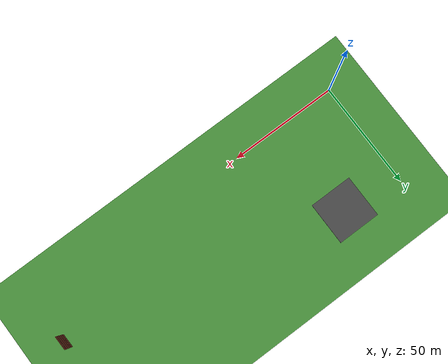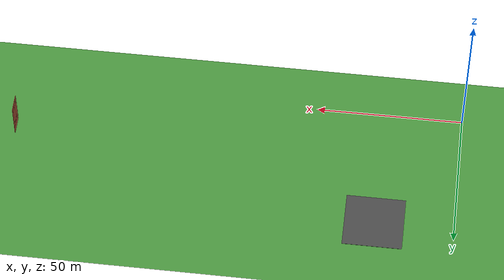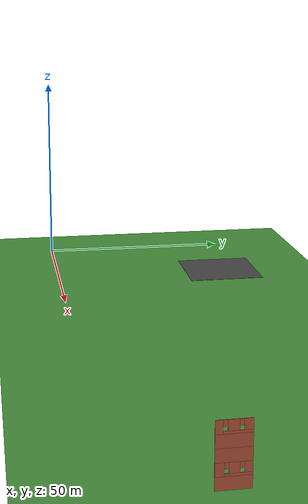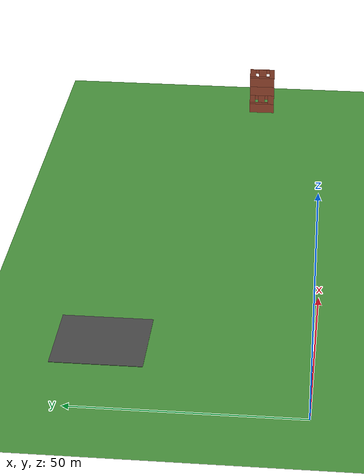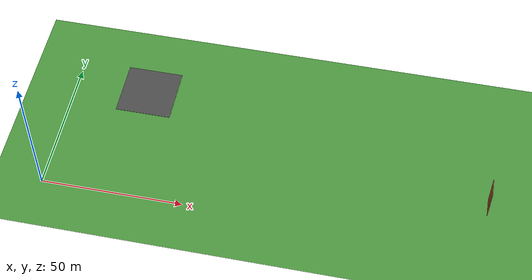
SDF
<sdf version="1.7">
 <world name="default">
  <model name="ground_plane">
   <static>1</static>
   <link name="link">
    <collision name="collision">
     <geometry><plane><normal>0 0 1</normal><size>100 100</size></plane></geometry>
     <surface>
      <contact><collide_bitmask>65535</collide_bitmask></contact>
      <friction><ode><mu>100</mu><mu2>50</mu2></ode></friction>
     </surface>
    </collision>
    <visual name="grass">
     <pose>0 0 -0.1 0 -0 0</pose>
     <cast_shadows>0</cast_shadows>
     <geometry><plane><normal>0 0 1</normal><size>1000 1000</size></plane></geometry>
     <material>
      <script><uri>file://media/materials/scripts/gazebo.material</uri><name>Gazebo/Grass</name></script>
     </material>
    </visual>
   </link>
  </model>
  <model name="asphalt_plane">
   <static>1</static>
   <link name="link">
    <collision name="collision"><geometry><box><size>20 20 0.1</size></box></geometry></collision>
    <visual name="visual">
     <cast_shadows>0</cast_shadows>
     <geometry><box><size>20 20 0.1</size></box></geometry>
     <material>
      <script>
       <uri>model://asphalt_plane/materials/scripts</uri>
       <uri>model://asphalt_plane/materials/textures</uri>
       <name>vrc/asphalt</name>
      </script>
     </material>
    </visual>
   </link>
   <pose>26.7323 45.4974 0 0 -0 0</pose>
  </model>
  <model name="my_building_1">
   <link name="Wall_18">
    <pose>-4.12557 -6.05 0 0 -0 0</pose>
    <visual name="Wall_18_Visual">
     <pose>0 0 1.25 0 -0 0</pose>
     <geometry><box><size>6.5 0.15 2.5</size></box></geometry>
     <material>
      <script><uri>file://media/materials/scripts/gazebo.material</uri><name>Gazebo/Bricks</name></script>
      <ambient>1 1 1 1</ambient>
      <shader type="pixel"/>
     </material>
     <meta><layer>0</layer></meta>
    </visual>
    <collision name="Wall_18_Collision">
     <pose>0 0 1.25 0 -0 0</pose>
     <geometry><box><size>6.5 0.15 2.5</size></box></geometry>
     <surface>
      <friction>
       <ode><mu>1</mu><mu2>1</mu2><fdir1>0 0 0</fdir1><slip1>0</slip1><slip2>0</slip2></ode>
       <torsional>
        <coefficient>1</coefficient>
        <patch_radius>0</patch_radius>
        <surface_radius>0</surface_radius>
        <use_patch_radius>1</use_patch_radius>
        <ode><slip>0</slip></ode>
       </torsional>
      </friction>
      <bounce><restitution_coefficient>0</restitution_coefficient><threshold>1e+06</threshold></bounce>
      <contact>
       <collide_without_contact>0</collide_without_contact>
       <collide_without_contact_bitmask>1</collide_without_contact_bitmask>
       <collide_bitmask>1</collide_bitmask>
       <ode>
        <soft_cfm>0</soft_cfm>
        <soft_erp>0.2</soft_erp>
        <kp>1e+13</kp>
        <kd>1</kd>
        <max_vel>0.01</max_vel>
        <min_depth>0</min_depth>
       </ode>
       <bullet>
        <split_impulse>1</split_impulse>
        <split_impulse_penetration_threshold>-0.01</split_impulse_penetration_threshold>
        <soft_cfm>0</soft_cfm>
        <soft_erp>0.2</soft_erp>
        <kp>1e+13</kp>
        <kd>1</kd>
       </bullet>
      </contact>
     </surface>
    </collision>
   </link>
   <link name="Wall_75">
    <pose>-4.12557 -6.05 2.5 0 -0 0</pose>
    <visual name="Wall_75_Visual_2">
     <pose>0.117505 0 1.5 0 -0 0</pose>
     <geometry><box><size>1.83342 0.15 2</size></box></geometry>
     <material>
      <script><uri>file://media/materials/scripts/gazebo.material</uri><name>Gazebo/Bricks</name></script>
      <ambient>1 1 1 1</ambient>
      <shader type="pixel"/>
     </material>
     <meta><layer>1</layer></meta>
    </visual>
    <visual name="Wall_75_Visual_5">
     <pose>1.43422 0 1.9 0 -0 0</pose>
     <geometry><box><size>0.8 0.15 1.2</size></box></geometry>
     <material>
      <script><uri>file://media/materials/scripts/gazebo.material</uri><name>Gazebo/Bricks</name></script>
      <ambient>1 1 1 1</ambient>
      <shader type="pixel"/>
     </material>
     <meta><layer>1</layer></meta>
    </visual>
    <visual name="Wall_75_Visual_0">
     <pose>-2.4246 0 1.25 0 -0 0</pose>
     <geometry><box><size>1.6508 0.15 2.5</size></box></geometry>
     <material>
      <script><uri>file://media/materials/scripts/gazebo.material</uri><name>Gazebo/Bricks</name></script>
      <ambient>1 1 1 1</ambient>
      <shader type="pixel"/>
     </material>
     <meta><layer>1</layer></meta>
    </visual>
    <visual name="Wall_75_Visual_4">
     <pose>-1.19921 0 1.9 0 -0 0</pose>
     <geometry><box><size>0.8 0.15 1.2</size></box></geometry>
     <material>
      <script><uri>file://media/materials/scripts/gazebo.material</uri><name>Gazebo/Bricks</name></script>
      <ambient>1 1 1 1</ambient>
      <shader type="pixel"/>
     </material>
     <meta><layer>1</layer></meta>
    </visual>
    <visual name="Wall_75_Visual_3">
     <pose>2.54211 0 1.5 0 -0 0</pose>
     <geometry><box><size>1.41579 0.15 2</size></box></geometry>
     <material>
      <script><uri>file://media/materials/scripts/gazebo.material</uri><name>Gazebo/Bricks</name></script>
      <ambient>1 1 1 1</ambient>
      <shader type="pixel"/>
     </material>
     <meta><layer>1</layer></meta>
    </visual>
    <visual name="Wall_75_Visual_1">
     <pose>0.825397 0 0.25 0 -0 0</pose>
     <geometry><box><size>4.84921 0.15 0.5</size></box></geometry>
     <material>
      <script><uri>file://media/materials/scripts/gazebo.material</uri><name>Gazebo/Bricks</name></script>
      <ambient>1 1 1 1</ambient>
      <shader type="pixel"/>
     </material>
     <meta><layer>1</layer></meta>
    </visual>
    <collision name="Wall_75_Collision_0">
     <pose>-2.4246 0 1.25 0 -0 0</pose>
     <geometry><box><size>1.6508 0.15 2.5</size></box></geometry>
     <surface>
      <friction>
       <ode><mu>1</mu><mu2>1</mu2><fdir1>0 0 0</fdir1><slip1>0</slip1><slip2>0</slip2></ode>
       <torsional>
        <coefficient>1</coefficient>
        <patch_radius>0</patch_radius>
        <surface_radius>0</surface_radius>
        <use_patch_radius>1</use_patch_radius>
        <ode><slip>0</slip></ode>
       </torsional>
      </friction>
      <bounce><restitution_coefficient>0</restitution_coefficient><threshold>1e+06</threshold></bounce>
      <contact>
       <collide_without_contact>0</collide_without_contact>
       <collide_without_contact_bitmask>1</collide_without_contact_bitmask>
       <collide_bitmask>1</collide_bitmask>
       <ode>
        <soft_cfm>0</soft_cfm>
        <soft_erp>0.2</soft_erp>
        <kp>1e+13</kp>
        <kd>1</kd>
        <max_vel>0.01</max_vel>
        <min_depth>0</min_depth>
       </ode>
       <bullet>
        <split_impulse>1</split_impulse>
        <split_impulse_penetration_threshold>-0.01</split_impulse_penetration_threshold>
        <soft_cfm>0</soft_cfm>
        <soft_erp>0.2</soft_erp>
        <kp>1e+13</kp>
        <kd>1</kd>
       </bullet>
      </contact>
     </surface>
    </collision>
    <collision name="Wall_75_Collision_3">
     <pose>2.54211 0 1.5 0 -0 0</pose>
     <geometry><box><size>1.41579 0.15 2</size></box></geometry>
     <surface>
      <friction>
       <ode><mu>1</mu><mu2>1</mu2><fdir1>0 0 0</fdir1><slip1>0</slip1><slip2>0</slip2></ode>
       <torsional>
        <coefficient>1</coefficient>
        <patch_radius>0</patch_radius>
        <surface_radius>0</surface_radius>
        <use_patch_radius>1</use_patch_radius>
        <ode><slip>0</slip></ode>
       </torsional>
      </friction>
      <bounce><restitution_coefficient>0</restitution_coefficient><threshold>1e+06</threshold></bounce>
      <contact>
       <collide_without_contact>0</collide_without_contact>
       <collide_without_contact_bitmask>1</collide_without_contact_bitmask>
       <collide_bitmask>1</collide_bitmask>
       <ode>
        <soft_cfm>0</soft_cfm>
        <soft_erp>0.2</soft_erp>
        <kp>1e+13</kp>
        <kd>1</kd>
        <max_vel>0.01</max_vel>
        <min_depth>0</min_depth>
       </ode>
       <bullet>
        <split_impulse>1</split_impulse>
        <split_impulse_penetration_threshold>-0.01</split_impulse_penetration_threshold>
        <soft_cfm>0</soft_cfm>
        <soft_erp>0.2</soft_erp>
        <kp>1e+13</kp>
        <kd>1</kd>
       </bullet>
      </contact>
     </surface>
    </collision>
    <collision name="Wall_75_Collision_1">
     <pose>0.825397 0 0.25 0 -0 0</pose>
     <geometry><box><size>4.84921 0.15 0.5</size></box></geometry>
     <surface>
      <friction>
       <ode><mu>1</mu><mu2>1</mu2><fdir1>0 0 0</fdir1><slip1>0</slip1><slip2>0</slip2></ode>
       <torsional>
        <coefficient>1</coefficient>
        <patch_radius>0</patch_radius>
        <surface_radius>0</surface_radius>
        <use_patch_radius>1</use_patch_radius>
        <ode><slip>0</slip></ode>
       </torsional>
      </friction>
      <bounce><restitution_coefficient>0</restitution_coefficient><threshold>1e+06</threshold></bounce>
      <contact>
       <collide_without_contact>0</collide_without_contact>
       <collide_without_contact_bitmask>1</collide_without_contact_bitmask>
       <collide_bitmask>1</collide_bitmask>
       <ode>
        <soft_cfm>0</soft_cfm>
        <soft_erp>0.2</soft_erp>
        <kp>1e+13</kp>
        <kd>1</kd>
        <max_vel>0.01</max_vel>
        <min_depth>0</min_depth>
       </ode>
       <bullet>
        <split_impulse>1</split_impulse>
        <split_impulse_penetration_threshold>-0.01</split_impulse_penetration_threshold>
        <soft_cfm>0</soft_cfm>
        <soft_erp>0.2</soft_erp>
        <kp>1e+13</kp>
        <kd>1</kd>
       </bullet>
      </contact>
     </surface>
    </collision>
    <collision name="Wall_75_Collision_5">
     <pose>1.43422 0 1.9 0 -0 0</pose>
     <geometry><box><size>0.8 0.15 1.2</size></box></geometry>
     <surface>
      <friction>
       <ode><mu>1</mu><mu2>1</mu2><fdir1>0 0 0</fdir1><slip1>0</slip1><slip2>0</slip2></ode>
       <torsional>
        <coefficient>1</coefficient>
        <patch_radius>0</patch_radius>
        <surface_radius>0</surface_radius>
        <use_patch_radius>1</use_patch_radius>
        <ode><slip>0</slip></ode>
       </torsional>
      </friction>
      <bounce><restitution_coefficient>0</restitution_coefficient><threshold>1e+06</threshold></bounce>
      <contact>
       <collide_without_contact>0</collide_without_contact>
       <collide_without_contact_bitmask>1</collide_without_contact_bitmask>
       <collide_bitmask>1</collide_bitmask>
       <ode>
        <soft_cfm>0</soft_cfm>
        <soft_erp>0.2</soft_erp>
        <kp>1e+13</kp>
        <kd>1</kd>
        <max_vel>0.01</max_vel>
        <min_depth>0</min_depth>
       </ode>
       <bullet>
        <split_impulse>1</split_impulse>
        <split_impulse_penetration_threshold>-0.01</split_impulse_penetration_threshold>
        <soft_cfm>0</soft_cfm>
        <soft_erp>0.2</soft_erp>
        <kp>1e+13</kp>
        <kd>1</kd>
       </bullet>
      </contact>
     </surface>
    </collision>
    <collision name="Wall_75_Collision_2">
     <pose>0.117505 0 1.5 0 -0 0</pose>
     <geometry><box><size>1.83342 0.15 2</size></box></geometry>
     <surface>
      <friction>
       <ode><mu>1</mu><mu2>1</mu2><fdir1>0 0 0</fdir1><slip1>0</slip1><slip2>0</slip2></ode>
       <torsional>
        <coefficient>1</coefficient>
        <patch_radius>0</patch_radius>
        <surface_radius>0</surface_radius>
        <use_patch_radius>1</use_patch_radius>
        <ode><slip>0</slip></ode>
       </torsional>
      </friction>
      <bounce><restitution_coefficient>0</restitution_coefficient><threshold>1e+06</threshold></bounce>
      <contact>
       <collide_without_contact>0</collide_without_contact>
       <collide_without_contact_bitmask>1</collide_without_contact_bitmask>
       <collide_bitmask>1</collide_bitmask>
       <ode>
        <soft_cfm>0</soft_cfm>
        <soft_erp>0.2</soft_erp>
        <kp>1e+13</kp>
        <kd>1</kd>
        <max_vel>0.01</max_vel>
        <min_depth>0</min_depth>
       </ode>
       <bullet>
        <split_impulse>1</split_impulse>
        <split_impulse_penetration_threshold>-0.01</split_impulse_penetration_threshold>
        <soft_cfm>0</soft_cfm>
        <soft_erp>0.2</soft_erp>
        <kp>1e+13</kp>
        <kd>1</kd>
       </bullet>
      </contact>
     </surface>
    </collision>
    <collision name="Wall_75_Collision_4">
     <pose>-1.19921 0 1.9 0 -0 0</pose>
     <geometry><box><size>0.8 0.15 1.2</size></box></geometry>
     <surface>
      <friction>
       <ode><mu>1</mu><mu2>1</mu2><fdir1>0 0 0</fdir1><slip1>0</slip1><slip2>0</slip2></ode>
       <torsional>
        <coefficient>1</coefficient>
        <patch_radius>0</patch_radius>
        <surface_radius>0</surface_radius>
        <use_patch_radius>1</use_patch_radius>
        <ode><slip>0</slip></ode>
       </torsional>
      </friction>
      <bounce><restitution_coefficient>0</restitution_coefficient><threshold>1e+06</threshold></bounce>
      <contact>
       <collide_without_contact>0</collide_without_contact>
       <collide_without_contact_bitmask>1</collide_without_contact_bitmask>
       <collide_bitmask>1</collide_bitmask>
       <ode>
        <soft_cfm>0</soft_cfm>
        <soft_erp>0.2</soft_erp>
        <kp>1e+13</kp>
        <kd>1</kd>
        <max_vel>0.01</max_vel>
        <min_depth>0</min_depth>
       </ode>
       <bullet>
        <split_impulse>1</split_impulse>
        <split_impulse_penetration_threshold>-0.01</split_impulse_penetration_threshold>
        <soft_cfm>0</soft_cfm>
        <soft_erp>0.2</soft_erp>
        <kp>1e+13</kp>
        <kd>1</kd>
       </bullet>
      </contact>
     </surface>
    </collision>
   </link>
   <link name="Wall_79">
    <pose>-4.12557 -6.05 5 0 -0 0</pose>
    <visual name="Wall_79_Visual">
     <pose>0 0 1.25 0 -0 0</pose>
     <geometry><box><size>6.5 0.15 2.5</size></box></geometry>
     <material>
      <script><uri>file://media/materials/scripts/gazebo.material</uri><name>Gazebo/Bricks</name></script>
      <ambient>1 1 1 1</ambient>
      <shader type="pixel"/>
     </material>
     <meta><layer>2</layer></meta>
    </visual>
    <collision name="Wall_79_Collision">
     <pose>0 0 1.25 0 -0 0</pose>
     <geometry><box><size>6.5 0.15 2.5</size></box></geometry>
     <surface>
      <friction>
       <ode><mu>1</mu><mu2>1</mu2><fdir1>0 0 0</fdir1><slip1>0</slip1><slip2>0</slip2></ode>
       <torsional>
        <coefficient>1</coefficient>
        <patch_radius>0</patch_radius>
        <surface_radius>0</surface_radius>
        <use_patch_radius>1</use_patch_radius>
        <ode><slip>0</slip></ode>
       </torsional>
      </friction>
      <bounce><restitution_coefficient>0</restitution_coefficient><threshold>1e+06</threshold></bounce>
      <contact>
       <collide_without_contact>0</collide_without_contact>
       <collide_without_contact_bitmask>1</collide_without_contact_bitmask>
       <collide_bitmask>1</collide_bitmask>
       <ode>
        <soft_cfm>0</soft_cfm>
        <soft_erp>0.2</soft_erp>
        <kp>1e+13</kp>
        <kd>1</kd>
        <max_vel>0.01</max_vel>
        <min_depth>0</min_depth>
       </ode>
       <bullet>
        <split_impulse>1</split_impulse>
        <split_impulse_penetration_threshold>-0.01</split_impulse_penetration_threshold>
        <soft_cfm>0</soft_cfm>
        <soft_erp>0.2</soft_erp>
        <kp>1e+13</kp>
        <kd>1</kd>
       </bullet>
      </contact>
     </surface>
    </collision>
   </link>
   <link name="Wall_83">
    <pose>-4.12557 -6.05 7.5 0 -0 0</pose>
    <visual name="Wall_83_Visual">
     <pose>0 0 1.25 0 -0 0</pose>
     <geometry><box><size>6.5 0.15 2.5</size></box></geometry>
     <material>
      <script><uri>file://media/materials/scripts/gazebo.material</uri><name>Gazebo/Bricks</name></script>
      <ambient>1 1 1 1</ambient>
      <shader type="pixel"/>
     </material>
     <meta><layer>3</layer></meta>
    </visual>
    <collision name="Wall_83_Collision">
     <pose>0 0 1.25 0 -0 0</pose>
     <geometry><box><size>6.5 0.15 2.5</size></box></geometry>
     <surface>
      <friction>
       <ode><mu>1</mu><mu2>1</mu2><fdir1>0 0 0</fdir1><slip1>0</slip1><slip2>0</slip2></ode>
       <torsional>
        <coefficient>1</coefficient>
        <patch_radius>0</patch_radius>
        <surface_radius>0</surface_radius>
        <use_patch_radius>1</use_patch_radius>
        <ode><slip>0</slip></ode>
       </torsional>
      </friction>
      <bounce><restitution_coefficient>0</restitution_coefficient><threshold>1e+06</threshold></bounce>
      <contact>
       <collide_without_contact>0</collide_without_contact>
       <collide_without_contact_bitmask>1</collide_without_contact_bitmask>
       <collide_bitmask>1</collide_bitmask>
       <ode>
        <soft_cfm>0</soft_cfm>
        <soft_erp>0.2</soft_erp>
        <kp>1e+13</kp>
        <kd>1</kd>
        <max_vel>0.01</max_vel>
        <min_depth>0</min_depth>
       </ode>
       <bullet>
        <split_impulse>1</split_impulse>
        <split_impulse_penetration_threshold>-0.01</split_impulse_penetration_threshold>
        <soft_cfm>0</soft_cfm>
        <soft_erp>0.2</soft_erp>
        <kp>1e+13</kp>
        <kd>1</kd>
       </bullet>
      </contact>
     </surface>
    </collision>
   </link>
   <link name="Wall_87">
    <pose>-4.12557 -6.05 10 0 -0 0</pose>
    <visual name="Wall_87_Visual_4">
     <pose>-1.49181 0 1.9 0 -0 0</pose>
     <geometry><box><size>0.8 0.15 1.2</size></box></geometry>
     <material>
      <script><uri>file://media/materials/scripts/gazebo.material</uri><name>Gazebo/Bricks</name></script>
      <ambient>1 1 1 1</ambient>
      <shader type="pixel"/>
     </material>
     <meta><layer>4</layer></meta>
    </visual>
    <visual name="Wall_87_Visual_3">
     <pose>2.46231 0 1.5 0 -0 0</pose>
     <geometry><box><size>1.57539 0.15 2</size></box></geometry>
     <material>
      <script><uri>file://media/materials/scripts/gazebo.material</uri><name>Gazebo/Bricks</name></script>
      <ambient>1 1 1 1</ambient>
      <shader type="pixel"/>
     </material>
     <meta><layer>4</layer></meta>
    </visual>
    <visual name="Wall_87_Visual_0">
     <pose>-2.5709 0 1.25 0 -0 0</pose>
     <geometry><box><size>1.35819 0.15 2.5</size></box></geometry>
     <material>
      <script><uri>file://media/materials/scripts/gazebo.material</uri><name>Gazebo/Bricks</name></script>
      <ambient>1 1 1 1</ambient>
      <shader type="pixel"/>
     </material>
     <meta><layer>4</layer></meta>
    </visual>
    <visual name="Wall_87_Visual_1">
     <pose>0.679097 0 0.25 0 -0 0</pose>
     <geometry><box><size>5.14181 0.15 0.5</size></box></geometry>
     <material>
      <script><uri>file://media/materials/scripts/gazebo.material</uri><name>Gazebo/Bricks</name></script>
      <ambient>1 1 1 1</ambient>
      <shader type="pixel"/>
     </material>
     <meta><layer>4</layer></meta>
    </visual>
    <visual name="Wall_87_Visual_2">
     <pose>-0.108597 0 1.5 0 -0 0</pose>
     <geometry><box><size>1.96642 0.15 2</size></box></geometry>
     <material>
      <script><uri>file://media/materials/scripts/gazebo.material</uri><name>Gazebo/Bricks</name></script>
      <ambient>1 1 1 1</ambient>
      <shader type="pixel"/>
     </material>
     <meta><layer>4</layer></meta>
    </visual>
    <visual name="Wall_87_Visual_5">
     <pose>1.27461 0 1.9 0 -0 0</pose>
     <geometry><box><size>0.8 0.15 1.2</size></box></geometry>
     <material>
      <script><uri>file://media/materials/scripts/gazebo.material</uri><name>Gazebo/Bricks</name></script>
      <ambient>1 1 1 1</ambient>
      <shader type="pixel"/>
     </material>
     <meta><layer>4</layer></meta>
    </visual>
    <collision name="Wall_87_Collision_2">
     <pose>-0.108597 0 1.5 0 -0 0</pose>
     <geometry><box><size>1.96642 0.15 2</size></box></geometry>
     <surface>
      <friction>
       <ode><mu>1</mu><mu2>1</mu2><fdir1>0 0 0</fdir1><slip1>0</slip1><slip2>0</slip2></ode>
       <torsional>
        <coefficient>1</coefficient>
        <patch_radius>0</patch_radius>
        <surface_radius>0</surface_radius>
        <use_patch_radius>1</use_patch_radius>
        <ode><slip>0</slip></ode>
       </torsional>
      </friction>
      <bounce><restitution_coefficient>0</restitution_coefficient><threshold>1e+06</threshold></bounce>
      <contact>
       <collide_without_contact>0</collide_without_contact>
       <collide_without_contact_bitmask>1</collide_without_contact_bitmask>
       <collide_bitmask>1</collide_bitmask>
       <ode>
        <soft_cfm>0</soft_cfm>
        <soft_erp>0.2</soft_erp>
        <kp>1e+13</kp>
        <kd>1</kd>
        <max_vel>0.01</max_vel>
        <min_depth>0</min_depth>
       </ode>
       <bullet>
        <split_impulse>1</split_impulse>
        <split_impulse_penetration_threshold>-0.01</split_impulse_penetration_threshold>
        <soft_cfm>0</soft_cfm>
        <soft_erp>0.2</soft_erp>
        <kp>1e+13</kp>
        <kd>1</kd>
       </bullet>
      </contact>
     </surface>
    </collision>
    <collision name="Wall_87_Collision_3">
     <pose>2.46231 0 1.5 0 -0 0</pose>
     <geometry><box><size>1.57539 0.15 2</size></box></geometry>
     <surface>
      <friction>
       <ode><mu>1</mu><mu2>1</mu2><fdir1>0 0 0</fdir1><slip1>0</slip1><slip2>0</slip2></ode>
       <torsional>
        <coefficient>1</coefficient>
        <patch_radius>0</patch_radius>
        <surface_radius>0</surface_radius>
        <use_patch_radius>1</use_patch_radius>
        <ode><slip>0</slip></ode>
       </torsional>
      </friction>
      <bounce><restitution_coefficient>0</restitution_coefficient><threshold>1e+06</threshold></bounce>
      <contact>
       <collide_without_contact>0</collide_without_contact>
       <collide_without_contact_bitmask>1</collide_without_contact_bitmask>
       <collide_bitmask>1</collide_bitmask>
       <ode>
        <soft_cfm>0</soft_cfm>
        <soft_erp>0.2</soft_erp>
        <kp>1e+13</kp>
        <kd>1</kd>
        <max_vel>0.01</max_vel>
        <min_depth>0</min_depth>
       </ode>
       <bullet>
        <split_impulse>1</split_impulse>
        <split_impulse_penetration_threshold>-0.01</split_impulse_penetration_threshold>
        <soft_cfm>0</soft_cfm>
        <soft_erp>0.2</soft_erp>
        <kp>1e+13</kp>
        <kd>1</kd>
       </bullet>
      </contact>
     </surface>
    </collision>
    <collision name="Wall_87_Collision_0">
     <pose>-2.5709 0 1.25 0 -0 0</pose>
     <geometry><box><size>1.35819 0.15 2.5</size></box></geometry>
     <surface>
      <friction>
       <ode><mu>1</mu><mu2>1</mu2><fdir1>0 0 0</fdir1><slip1>0</slip1><slip2>0</slip2></ode>
       <torsional>
        <coefficient>1</coefficient>
        <patch_radius>0</patch_radius>
        <surface_radius>0</surface_radius>
        <use_patch_radius>1</use_patch_radius>
        <ode><slip>0</slip></ode>
       </torsional>
      </friction>
      <bounce><restitution_coefficient>0</restitution_coefficient><threshold>1e+06</threshold></bounce>
      <contact>
       <collide_without_contact>0</collide_without_contact>
       <collide_without_contact_bitmask>1</collide_without_contact_bitmask>
       <collide_bitmask>1</collide_bitmask>
       <ode>
        <soft_cfm>0</soft_cfm>
        <soft_erp>0.2</soft_erp>
        <kp>1e+13</kp>
        <kd>1</kd>
        <max_vel>0.01</max_vel>
        <min_depth>0</min_depth>
       </ode>
       <bullet>
        <split_impulse>1</split_impulse>
        <split_impulse_penetration_threshold>-0.01</split_impulse_penetration_threshold>
        <soft_cfm>0</soft_cfm>
        <soft_erp>0.2</soft_erp>
        <kp>1e+13</kp>
        <kd>1</kd>
       </bullet>
      </contact>
     </surface>
    </collision>
    <collision name="Wall_87_Collision_5">
     <pose>1.27461 0 1.9 0 -0 0</pose>
     <geometry><box><size>0.8 0.15 1.2</size></box></geometry>
     <surface>
      <friction>
       <ode><mu>1</mu><mu2>1</mu2><fdir1>0 0 0</fdir1><slip1>0</slip1><slip2>0</slip2></ode>
       <torsional>
        <coefficient>1</coefficient>
        <patch_radius>0</patch_radius>
        <surface_radius>0</surface_radius>
        <use_patch_radius>1</use_patch_radius>
        <ode><slip>0</slip></ode>
       </torsional>
      </friction>
      <bounce><restitution_coefficient>0</restitution_coefficient><threshold>1e+06</threshold></bounce>
      <contact>
       <collide_without_contact>0</collide_without_contact>
       <collide_without_contact_bitmask>1</collide_without_contact_bitmask>
       <collide_bitmask>1</collide_bitmask>
       <ode>
        <soft_cfm>0</soft_cfm>
        <soft_erp>0.2</soft_erp>
        <kp>1e+13</kp>
        <kd>1</kd>
        <max_vel>0.01</max_vel>
        <min_depth>0</min_depth>
       </ode>
       <bullet>
        <split_impulse>1</split_impulse>
        <split_impulse_penetration_threshold>-0.01</split_impulse_penetration_threshold>
        <soft_cfm>0</soft_cfm>
        <soft_erp>0.2</soft_erp>
        <kp>1e+13</kp>
        <kd>1</kd>
       </bullet>
      </contact>
     </surface>
    </collision>
    <collision name="Wall_87_Collision_4">
     <pose>-1.49181 0 1.9 0 -0 0</pose>
     <geometry><box><size>0.8 0.15 1.2</size></box></geometry>
     <surface>
      <friction>
       <ode><mu>1</mu><mu2>1</mu2><fdir1>0 0 0</fdir1><slip1>0</slip1><slip2>0</slip2></ode>
       <torsional>
        <coefficient>1</coefficient>
        <patch_radius>0</patch_radius>
        <surface_radius>0</surface_radius>
        <use_patch_radius>1</use_patch_radius>
        <ode><slip>0</slip></ode>
       </torsional>
      </friction>
      <bounce><restitution_coefficient>0</restitution_coefficient><threshold>1e+06</threshold></bounce>
      <contact>
       <collide_without_contact>0</collide_without_contact>
       <collide_without_contact_bitmask>1</collide_without_contact_bitmask>
       <collide_bitmask>1</collide_bitmask>
       <ode>
        <soft_cfm>0</soft_cfm>
        <soft_erp>0.2</soft_erp>
        <kp>1e+13</kp>
        <kd>1</kd>
        <max_vel>0.01</max_vel>
        <min_depth>0</min_depth>
       </ode>
       <bullet>
        <split_impulse>1</split_impulse>
        <split_impulse_penetration_threshold>-0.01</split_impulse_penetration_threshold>
        <soft_cfm>0</soft_cfm>
        <soft_erp>0.2</soft_erp>
        <kp>1e+13</kp>
        <kd>1</kd>
       </bullet>
      </contact>
     </surface>
    </collision>
    <collision name="Wall_87_Collision_1">
     <pose>0.679097 0 0.25 0 -0 0</pose>
     <geometry><box><size>5.14181 0.15 0.5</size></box></geometry>
     <surface>
      <friction>
       <ode><mu>1</mu><mu2>1</mu2><fdir1>0 0 0</fdir1><slip1>0</slip1><slip2>0</slip2></ode>
       <torsional>
        <coefficient>1</coefficient>
        <patch_radius>0</patch_radius>
        <surface_radius>0</surface_radius>
        <use_patch_radius>1</use_patch_radius>
        <ode><slip>0</slip></ode>
       </torsional>
      </friction>
      <bounce><restitution_coefficient>0</restitution_coefficient><threshold>1e+06</threshold></bounce>
      <contact>
       <collide_without_contact>0</collide_without_contact>
       <collide_without_contact_bitmask>1</collide_without_contact_bitmask>
       <collide_bitmask>1</collide_bitmask>
       <ode>
        <soft_cfm>0</soft_cfm>
        <soft_erp>0.2</soft_erp>
        <kp>1e+13</kp>
        <kd>1</kd>
        <max_vel>0.01</max_vel>
        <min_depth>0</min_depth>
       </ode>
       <bullet>
        <split_impulse>1</split_impulse>
        <split_impulse_penetration_threshold>-0.01</split_impulse_penetration_threshold>
        <soft_cfm>0</soft_cfm>
        <soft_erp>0.2</soft_erp>
        <kp>1e+13</kp>
        <kd>1</kd>
       </bullet>
      </contact>
     </surface>
    </collision>
   </link>
   <static>1</static>
   <pose>146.525 23.1421 0 0 -0 1.58902</pose>
  </model>
 </world>
</sdf>
